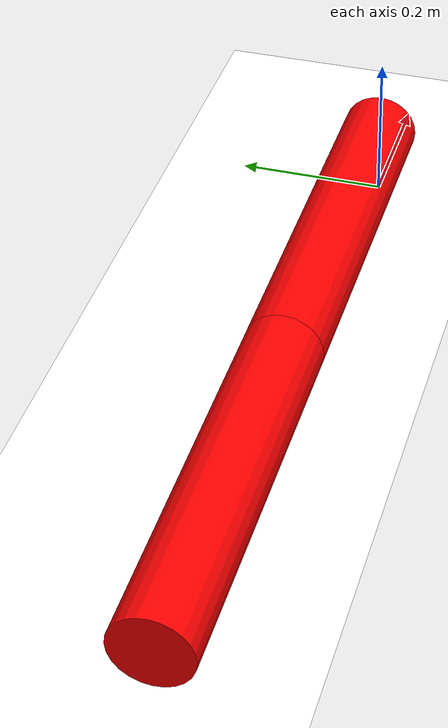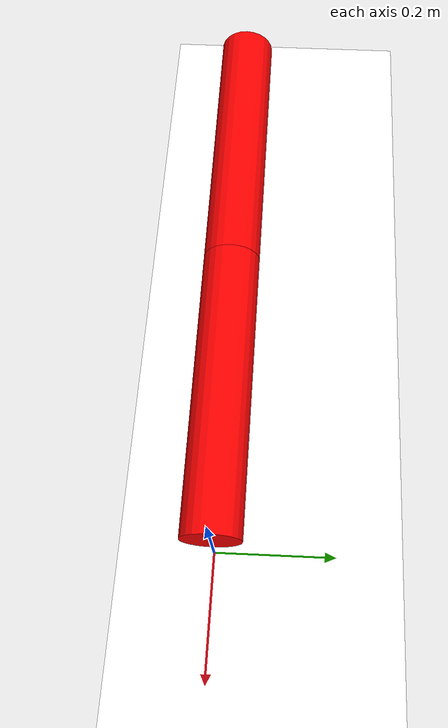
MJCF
<mujoco>
	<asset>
		<material name="red"   rgba="1 0 0 1"/>
		<material name="green" rgba="0 1 0 1"/>
		<material name="blue"  rgba="0 0 1 1"/>
		<material name="white" rgba="1 1 1 1"/>
		<material name="gray"  rgba=".5 .5 .5 1"/>
	</asset>

    <worldbody>
        <light diffuse=".5 .5 .5" pos="0 0 10" dir="0 0 -1"/>
        <geom type="plane" size="2 2 0.1" rgba="1 1 1 1"/>

        <body name="link 0-0" pos="-0.75 0 0.1" euler="0 90 0">
            <joint name="joint 0-0" type="hinge" axis="-1 0 0" pos="0 0 -0.25"/>
            <geom name="geom link 0-0" type="cylinder" size="0.05 0.25" material="red"/>
            <body name="link 0-1" pos="0 0 0.5" euler="0 0 0">
                <joint name="joint 0-1" type="hinge" axis="-1 0 0" pos="0 0 -0.25"/>
                <geom name="geom link 0-1" type="cylinder" size="0.05 0.25" material="red"/>
            </body>
        </body>

        <body name="link 0-0 shade" pos="-0.75 0 0.1" euler="0 90 0">
            <joint name="joint 0-0 shade" type="hinge" axis="-1 0 0" pos="0 0 -0.25"/>
            <geom name="geom link 0-0 shade" type="cylinder" size="0.05 0.25" material="green"/>
            <body name="link 0-1 shade" pos="0 0 0.5" euler="0 0 0">
                <joint name="joint 0-1 shade" type="hinge" axis="-1 0 0" pos="0 0 -0.25"/>
                <geom name="geom link 0-1 shade" type="cylinder" size="0.05 0.25" material="green"/>
            </body>
        </body>

    </worldbody>

    <contact>
        <exclude body1="link 0-0 shade" body2="link 0-1 shade"/>
        <exclude body1="link 0-0 shade" body2="link 0-0"/>
        <exclude body1="link 0-0 shade" body2="link 0-1"/>
        <exclude body1="link 0-1 shade" body2="link 0-0"/>
        <exclude body1="link 0-1 shade" body2="link 0-1"/>
    </contact>
</mujoco>
